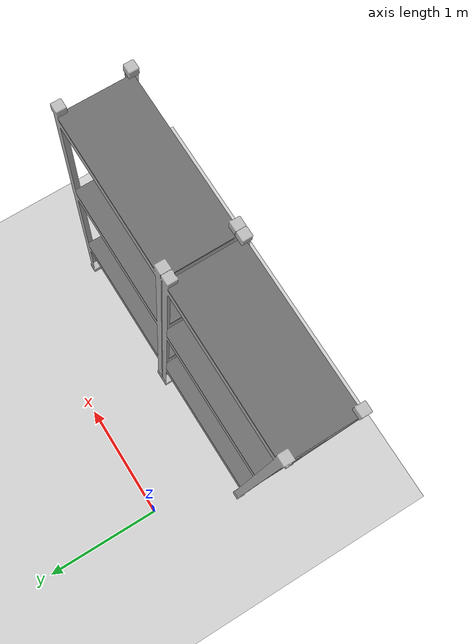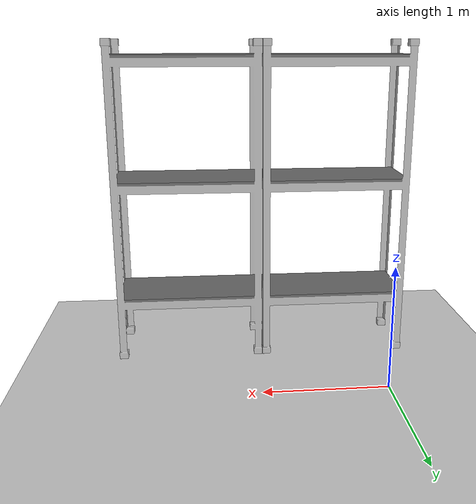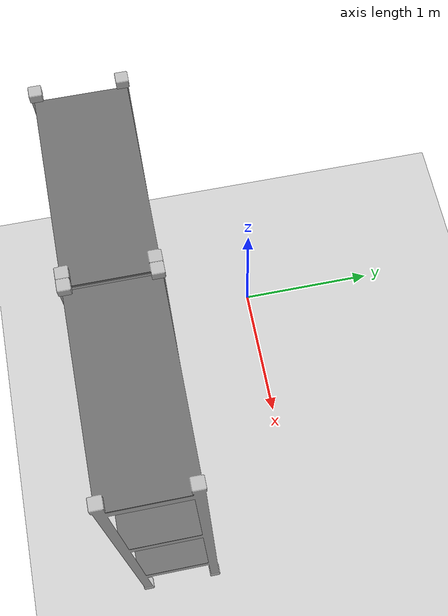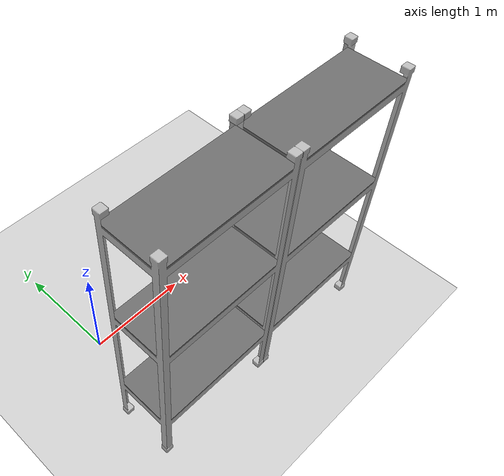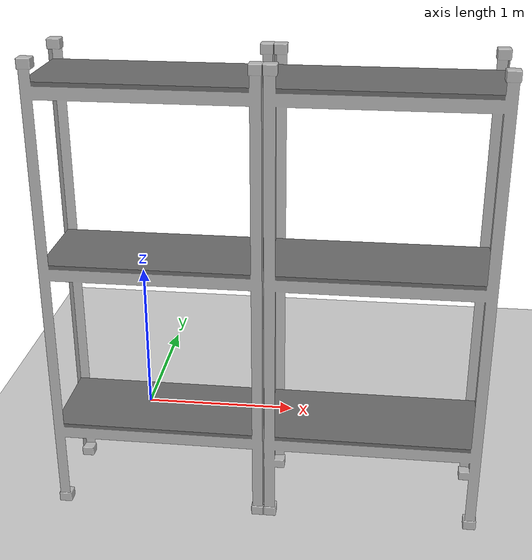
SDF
<?xml version="1.0" ?>
<sdf version="1.5">
  <world name="default">
    <!-- A global light source -->
    <include>
      <uri>model://sun</uri>
    </include>
    <!-- A ground plane -->
    <include>
      <pose>-6.0 -7.0 0.0 0.0 -0.0 0.0</pose>
      <uri>model://ground_plane</uri>
    </include>

    <!-- Test Shelf -->
    <include>
      <pose>-6.0 -7.0 0.0 0.0 -0.0 0.0</pose>
      <uri>model://shelf_0_5m</uri>
    </include>
  </world>
</sdf>

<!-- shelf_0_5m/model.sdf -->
<sdf version="1.5">
  <model name="shelf">
    <pose>0 0 0  0 0 0</pose>
    <static>true</static>
    <link name="body">
      <visual name="visual">
        <geometry>
          <mesh><uri>model://shelf_0_5m/shelf_0_5m.dae</uri></mesh>
        </geometry>
      </visual>
      <collision name="collision">
        <geometry>
          <mesh><uri>model://shelf_0_5m/shelf_0_5m.dae</uri></mesh>
        </geometry>
      </collision>
    </link>
  </model>
</sdf>
